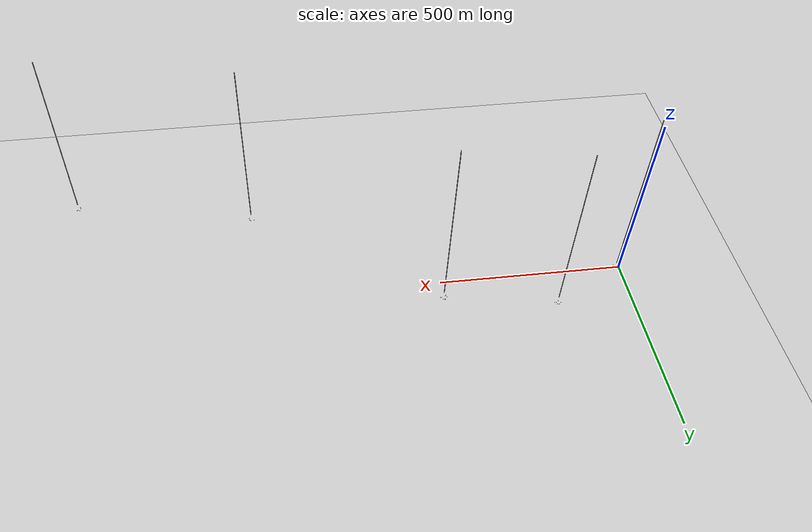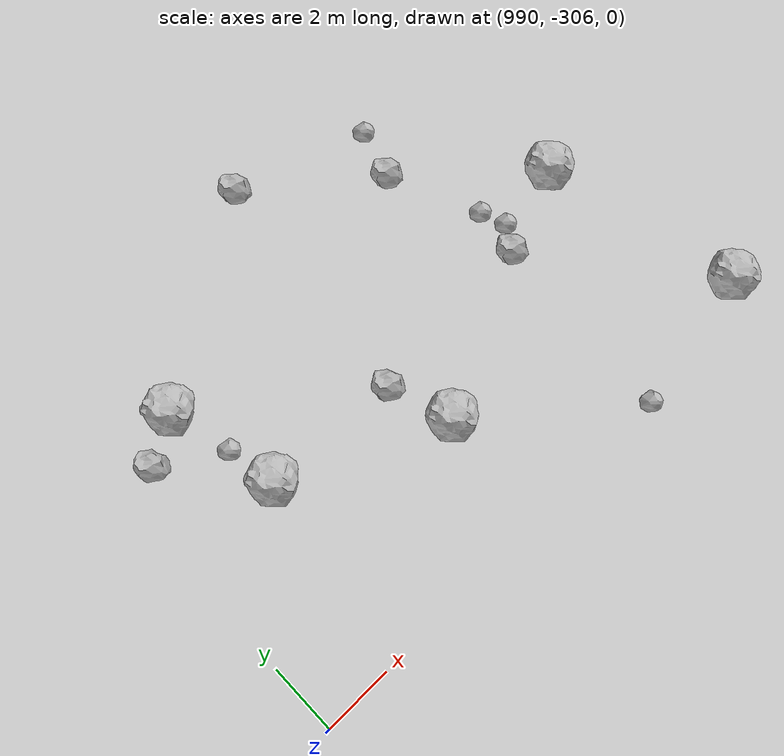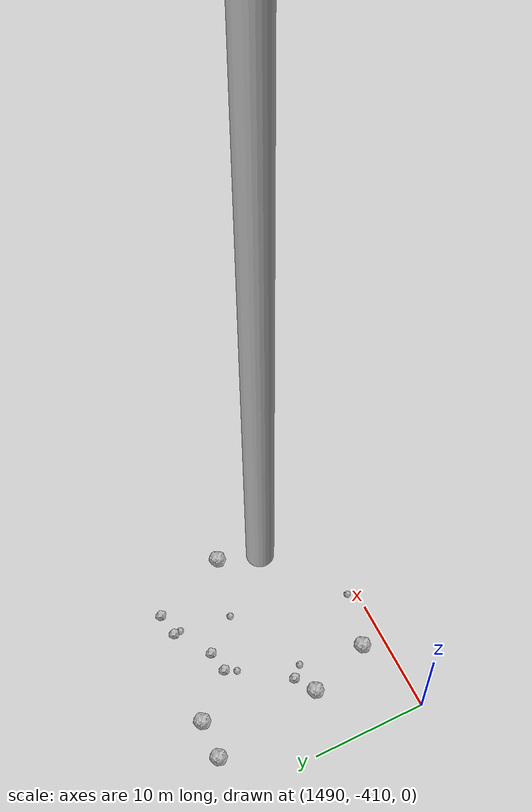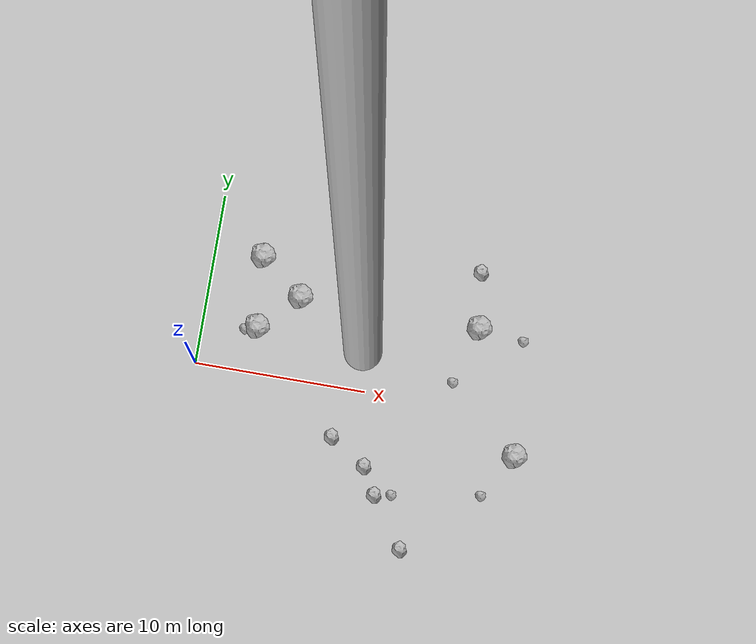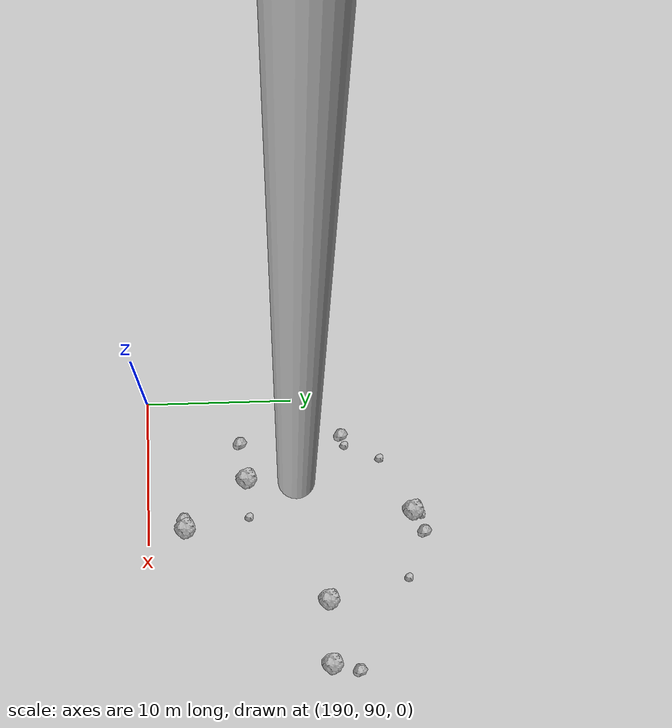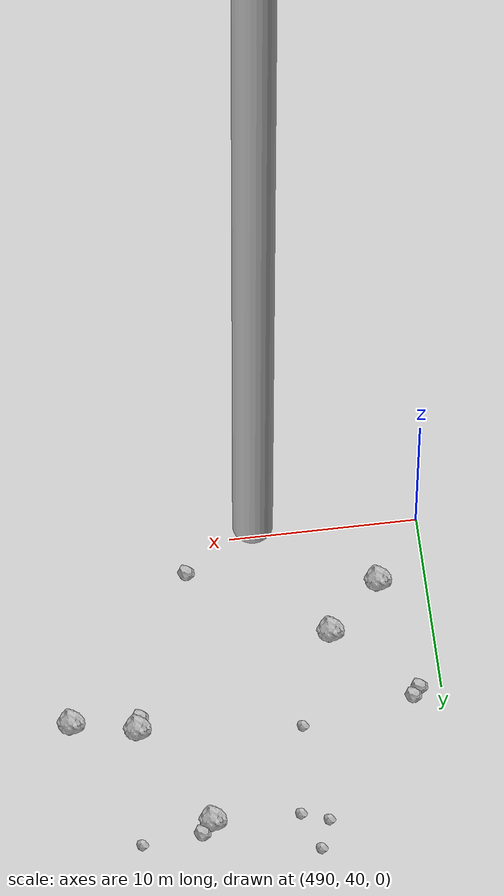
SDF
<?xml version="1.0" ?>
<sdf version="1.6">
  <world name="default">

    <include>
      <uri>model://custom_ground</uri>
    </include>

    <include>
      <uri>model://sun</uri>
    </include>

    <spherical_coordinates>
      <surface_model>EARTH_WGS84</surface_model>
      <latitude_deg>38.161479</latitude_deg>
      <longitude_deg>-122.454630</longitude_deg>
      <elevation>488.0</elevation>
      <heading_deg>90</heading_deg>
    </spherical_coordinates>

    <model name="rock1_0_0">
      <include>
        <uri>model://rock1</uri>
        <pose>2.8348057412272087 6.865386737954481 0.5 0 0 0</pose>
      </include>
    </model>
    <model name="rock1_0_1">
      <include>
        <uri>model://rock1</uri>
        <pose>16.027325328014122 4.777251781558922 0.5 0 0 0</pose>
      </include>
    </model>
    <model name="rock1_0_2">
      <include>
        <uri>model://rock1</uri>
        <pose>5.3896334539602915 4.860523609860749 0.5 0 0 0</pose>
      </include>
    </model>
    <model name="rock1_0_3">
      <include>
        <uri>model://rock1</uri>
        <pose>19.25881146143039 -2.2799716430607226 0.5 0 0 0</pose>
      </include>
    </model>
    <model name="rock1_0_4">
      <include>
        <uri>model://rock1</uri>
        <pose>3.1916226887469468 2.7039560409756884 0.5 0 0 0</pose>
      </include>
    </model>
    <model name="rock2_0_0">
      <include>
        <uri>model://rock2</uri>
        <pose>8.561672737310147 -2.933321386114276 0.3 0 0 0</pose>
      </include>
    </model>
    <model name="rock2_0_1">
      <include>
        <uri>model://rock2</uri>
        <pose>10.704250698164607 -4.323459474417206 0.3 0 0 0</pose>
      </include>
    </model>
    <model name="rock2_0_2">
      <include>
        <uri>model://rock2</uri>
        <pose>13.55791078766945 -8.732680009386119 0.3 0 0 0</pose>
      </include>
    </model>
    <model name="rock2_0_3">
      <include>
        <uri>model://rock2</uri>
        <pose>11.566662742385425 -5.870172268610599 0.3 0 0 0</pose>
      </include>
    </model>
    <model name="rock2_0_4">
      <include>
        <uri>model://rock2</uri>
        <pose>15.581152095139965 8.046608154039156 0.3 0 0 0</pose>
      </include>
    </model>
    <model name="rock3_0_0">
      <include>
        <uri>model://rock3</uri>
        <pose>12.52988077515803 -5.722422675302312 0.2 0 0 0</pose>
      </include>
    </model>
    <model name="rock3_0_1">
      <include>
        <uri>model://rock3</uri>
        <pose>2.4616941559356387 2.4393726832217606 0.2 0 0 0</pose>
      </include>
    </model>
    <model name="rock3_0_2">
      <include>
        <uri>model://rock3</uri>
        <pose>17.670188361186597 -4.897823875562988 0.2 0 0 0</pose>
      </include>
    </model>
    <model name="rock3_0_3">
      <include>
        <uri>model://rock3</uri>
        <pose>14.978838989311399 1.3679889210215457 0.2 0 0 0</pose>
      </include>
    </model>
    <model name="rock3_0_4">
      <include>
        <uri>model://rock3</uri>
        <pose>18.656446910176218 4.431032216902146 0.2 0 0 0</pose>
      </include>
    </model>
    <model name="rock1_1_0">
      <include>
        <uri>model://rock1</uri>
        <pose>195.6153020327055 96.78570397542177 0.5 0 0 0</pose>
      </include>
    </model>
    <model name="rock1_1_1">
      <include>
        <uri>model://rock1</uri>
        <pose>198.13181122987498 108.12460768804549 0.5 0 0 0</pose>
      </include>
    </model>
    <model name="rock1_1_2">
      <include>
        <uri>model://rock1</uri>
        <pose>204.0924280918048 102.17651766662388 0.5 0 0 0</pose>
      </include>
    </model>
    <model name="rock1_1_3">
      <include>
        <uri>model://rock1</uri>
        <pose>198.96515512545344 92.53481149843333 0.5 0 0 0</pose>
      </include>
    </model>
    <model name="rock1_1_4">
      <include>
        <uri>model://rock1</uri>
        <pose>208.39471240922148 102.2510876810133 0.5 0 0 0</pose>
      </include>
    </model>
    <model name="rock2_1_0">
      <include>
        <uri>model://rock2</uri>
        <pose>208.8446256550815 104.097120657126 0.3 0 0 0</pose>
      </include>
    </model>
    <model name="rock2_1_1">
      <include>
        <uri>model://rock2</uri>
        <pose>192.65560832792295 103.37551117303187 0.3 0 0 0</pose>
      </include>
    </model>
    <model name="rock2_1_2">
      <include>
        <uri>model://rock2</uri>
        <pose>198.2641623144413 92.44970579023114 0.3 0 0 0</pose>
      </include>
    </model>
    <model name="rock2_1_3">
      <include>
        <uri>model://rock2</uri>
        <pose>199.55045024909046 108.85718632237237 0.3 0 0 0</pose>
      </include>
    </model>
    <model name="rock2_1_4">
      <include>
        <uri>model://rock2</uri>
        <pose>193.05179461136726 96.39131506355967 0.3 0 0 0</pose>
      </include>
    </model>
    <model name="rock3_1_0">
      <include>
        <uri>model://rock3</uri>
        <pose>194.35930504952375 105.96610985140312 0.2 0 0 0</pose>
      </include>
    </model>
    <model name="rock3_1_1">
      <include>
        <uri>model://rock3</uri>
        <pose>202.69650518109708 107.63520139834579 0.2 0 0 0</pose>
      </include>
    </model>
    <model name="rock3_1_2">
      <include>
        <uri>model://rock3</uri>
        <pose>198.229123072696 96.90435980017274 0.2 0 0 0</pose>
      </include>
    </model>
    <model name="rock3_1_3">
      <include>
        <uri>model://rock3</uri>
        <pose>198.37678958424272 108.66777912259779 0.2 0 0 0</pose>
      </include>
    </model>
    <model name="rock3_1_4">
      <include>
        <uri>model://rock3</uri>
        <pose>193.37801578499187 103.56866464109663 0.2 0 0 0</pose>
      </include>
    </model>
    <model name="rock1_2_0">
      <include>
        <uri>model://rock1</uri>
        <pose>506.1187684657366 50.77002979246922 0.5 0 0 0</pose>
      </include>
    </model>
    <model name="rock1_2_1">
      <include>
        <uri>model://rock1</uri>
        <pose>502.8126419156195 56.451696180382434 0.5 0 0 0</pose>
      </include>
    </model>
    <model name="rock1_2_2">
      <include>
        <uri>model://rock1</uri>
        <pose>495.3829686498898 46.235760516390656 0.5 0 0 0</pose>
      </include>
    </model>
    <model name="rock1_2_3">
      <include>
        <uri>model://rock1</uri>
        <pose>509.5217965159972 50.03371965366301 0.5 0 0 0</pose>
      </include>
    </model>
    <model name="rock1_2_4">
      <include>
        <uri>model://rock1</uri>
        <pose>492.51278835874473 43.523775377155154 0.5 0 0 0</pose>
      </include>
    </model>
    <model name="rock2_2_0">
      <include>
        <uri>model://rock2</uri>
        <pose>491.17098888547497 49.97623371963067 0.3 0 0 0</pose>
      </include>
    </model>
    <model name="rock2_2_1">
      <include>
        <uri>model://rock2</uri>
        <pose>502.5346659383306 41.84292871235297 0.3 0 0 0</pose>
      </include>
    </model>
    <model name="rock2_2_2">
      <include>
        <uri>model://rock2</uri>
        <pose>505.8991996606887 50.034537784791695 0.3 0 0 0</pose>
      </include>
    </model>
    <model name="rock2_2_3">
      <include>
        <uri>model://rock2</uri>
        <pose>503.42971495030264 57.07334501910119 0.3 0 0 0</pose>
      </include>
    </model>
    <model name="rock2_2_4">
      <include>
        <uri>model://rock2</uri>
        <pose>491.54084347336385 50.442914261937275 0.3 0 0 0</pose>
      </include>
    </model>
    <model name="rock3_2_0">
      <include>
        <uri>model://rock3</uri>
        <pose>506.56805108005 57.31177462599547 0.2 0 0 0</pose>
      </include>
    </model>
    <model name="rock3_2_1">
      <include>
        <uri>model://rock3</uri>
        <pose>496.7780128426046 56.9963406444971 0.2 0 0 0</pose>
      </include>
    </model>
    <model name="rock3_2_2">
      <include>
        <uri>model://rock3</uri>
        <pose>497.37996028492665 58.58183222178077 0.2 0 0 0</pose>
      </include>
    </model>
    <model name="rock3_2_3">
      <include>
        <uri>model://rock3</uri>
        <pose>497.4817054990966 51.457981563468074 0.2 0 0 0</pose>
      </include>
    </model>
    <model name="rock3_2_4">
      <include>
        <uri>model://rock3</uri>
        <pose>498.19714381303913 56.48625611299197 0.2 0 0 0</pose>
      </include>
    </model>
    <model name="rock1_3_0">
      <include>
        <uri>model://rock1</uri>
        <pose>997.9509252399097 -302.43382007695647 0.5 0 0 0</pose>
      </include>
    </model>
    <model name="rock1_3_1">
      <include>
        <uri>model://rock1</uri>
        <pose>1006.6049640238065 -305.010018985586 0.5 0 0 0</pose>
      </include>
    </model>
    <model name="rock1_3_2">
      <include>
        <uri>model://rock1</uri>
        <pose>992.530250802536 -297.01278648083195 0.5 0 0 0</pose>
      </include>
    </model>
    <model name="rock1_3_3">
      <include>
        <uri>model://rock1</uri>
        <pose>1005.3642681704267 -299.05882851648323 0.5 0 0 0</pose>
      </include>
    </model>
    <model name="rock1_3_4">
      <include>
        <uri>model://rock1</uri>
        <pose>993.2603294313184 -300.38213062910415 0.5 0 0 0</pose>
      </include>
    </model>
    <model name="rock2_3_0">
      <include>
        <uri>model://rock2</uri>
        <pose>997.2947635593059 -300.56260783251315 0.3 0 0 0</pose>
      </include>
    </model>
    <model name="rock2_3_1">
      <include>
        <uri>model://rock2</uri>
        <pose>998.2209940227125 -293.12181130246915 0.3 0 0 0</pose>
      </include>
    </model>
    <model name="rock2_3_2">
      <include>
        <uri>model://rock2</uri>
        <pose>1001.7988123511851 -295.8437083559617 0.3 0 0 0</pose>
      </include>
    </model>
    <model name="rock2_3_3">
      <include>
        <uri>model://rock2</uri>
        <pose>991.1370031959489 -297.79617954354785 0.3 0 0 0</pose>
      </include>
    </model>
    <model name="rock2_3_4">
      <include>
        <uri>model://rock2</uri>
        <pose>1002.7051433416243 -300.08817283986923 0.3 0 0 0</pose>
      </include>
    </model>
    <model name="rock3_3_0">
      <include>
        <uri>model://rock3</uri>
        <pose>992.9218714888107 -298.9189578965026 0.2 0 0 0</pose>
      </include>
    </model>
    <model name="rock3_3_1">
      <include>
        <uri>model://rock3</uri>
        <pose>1003.1697796589892 -299.41595653870047 0.2 0 0 0</pose>
      </include>
    </model>
    <model name="rock3_3_2">
      <include>
        <uri>model://rock3</uri>
        <pose>1002.1871951167159 -305.9122544767388 0.2 0 0 0</pose>
      </include>
    </model>
    <model name="rock3_3_3">
      <include>
        <uri>model://rock3</uri>
        <pose>1002.8987533085854 -298.6526457809512 0.2 0 0 0</pose>
      </include>
    </model>
    <model name="rock3_3_4">
      <include>
        <uri>model://rock3</uri>
        <pose>1002.2622981600205 -294.3933401311705 0.2 0 0 0</pose>
      </include>
    </model>
    <model name="rock1_4_0">
      <include>
        <uri>model://rock1</uri>
        <pose>1496.8789186227646 -392.89111069222247 0.5 0 0 0</pose>
      </include>
    </model>
    <model name="rock1_4_1">
      <include>
        <uri>model://rock1</uri>
        <pose>1496.8581049635955 -408.01750360666097 0.5 0 0 0</pose>
      </include>
    </model>
    <model name="rock1_4_2">
      <include>
        <uri>model://rock1</uri>
        <pose>1495.0518518901456 -402.5549917653008 0.5 0 0 0</pose>
      </include>
    </model>
    <model name="rock1_4_3">
      <include>
        <uri>model://rock1</uri>
        <pose>1509.7175192972827 -400.4405745510214 0.5 0 0 0</pose>
      </include>
    </model>
    <model name="rock1_4_4">
      <include>
        <uri>model://rock1</uri>
        <pose>1493.498670837155 -392.77895380357927 0.5 0 0 0</pose>
      </include>
    </model>
    <model name="rock2_4_0">
      <include>
        <uri>model://rock2</uri>
        <pose>1505.0334979060322 -394.10469271487113 0.3 0 0 0</pose>
      </include>
    </model>
    <model name="rock2_4_1">
      <include>
        <uri>model://rock2</uri>
        <pose>1507.0982706282755 -393.7805673529349 0.3 0 0 0</pose>
      </include>
    </model>
    <model name="rock2_4_2">
      <include>
        <uri>model://rock2</uri>
        <pose>1496.8265589253244 -401.50655067399464 0.3 0 0 0</pose>
      </include>
    </model>
    <model name="rock2_4_3">
      <include>
        <uri>model://rock2</uri>
        <pose>1502.0273260880565 -396.17844853257174 0.3 0 0 0</pose>
      </include>
    </model>
    <model name="rock2_4_4">
      <include>
        <uri>model://rock2</uri>
        <pose>1500.143920657962 -396.51091624776444 0.3 0 0 0</pose>
      </include>
    </model>
    <model name="rock3_4_0">
      <include>
        <uri>model://rock3</uri>
        <pose>1505.06878874476 -394.7103555159422 0.2 0 0 0</pose>
      </include>
    </model>
    <model name="rock3_4_1">
      <include>
        <uri>model://rock3</uri>
        <pose>1504.3825683101456 -399.15428573524264 0.2 0 0 0</pose>
      </include>
    </model>
    <model name="rock3_4_2">
      <include>
        <uri>model://rock3</uri>
        <pose>1501.6595619378145 -409.1966530151279 0.2 0 0 0</pose>
      </include>
    </model>
    <model name="rock3_4_3">
      <include>
        <uri>model://rock3</uri>
        <pose>1499.6054528848647 -397.4884165660611 0.2 0 0 0</pose>
      </include>
    </model>
    <model name="rock3_4_4">
      <include>
        <uri>model://rock3</uri>
        <pose>1497.7048229736126 -402.47350406609775 0.2 0 0 0</pose>
      </include>
    </model>

    <model name="cylinder_1">
      <static>true</static>
      <link name="link">
        <visual name="visual">
          <geometry>
            <cylinder>
              <radius>1</radius>
              <length>500</length>
            </cylinder>
          </geometry>
        </visual>
      </link>
      <pose>10 0 270 0 0 0</pose>
    </model>

    <model name="cylinder_2">
      <static>true</static>
      <link name="link">
        <visual name="visual">
          <geometry>
            <cylinder>
              <radius>1</radius>
              <length>500</length>
            </cylinder>
          </geometry>
        </visual>
      </link>
      <pose>200 100 270 0 0 0</pose>
    </model>

    <model name="cylinder_3">
      <static>true</static>
      <link name="link">
        <visual name="visual">
          <geometry>
            <cylinder>
              <radius>1</radius>
              <length>500</length>
            </cylinder>
          </geometry>
        </visual>
      </link>
      <pose>500 50 270 0 0 0</pose>
    </model>

    <model name="cylinder_4">
      <static>true</static>
      <link name="link">
        <visual name="visual">
          <geometry>
            <cylinder>
              <radius>1</radius>
              <length>500</length>
            </cylinder>
          </geometry>
        </visual>
      </link>
      <pose>1000 -300 270 0 0 0</pose>
    </model>

    <model name="cylinder_5">
      <static>true</static>
      <link name="link">
        <visual name="visual">
          <geometry>
            <cylinder>
              <radius>1</radius>
              <length>500</length>
            </cylinder>
          </geometry>
        </visual>
      </link>
      <pose>1500 -400 270 0 0 0</pose>
    </model>

  </world>
</sdf>

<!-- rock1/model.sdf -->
<sdf version="1.6">
  <model name="rock1">
    <static>true</static> <!-- Set to true if the model should not move -->
    <pose>0 0 0 0 0 0</pose>

    <!--z offset is 0.5 for full scale-->

    <link name="link">
      <collision name="rock1_collision">
        <geometry>
          <mesh>
            <uri>model://meshes/rock1.dae</uri>
          </mesh>
        </geometry>
      </collision>
      <visual name="rock1_visual">
        <geometry>
          <mesh>
            <uri>model://meshes/rock1.dae</uri>
          </mesh>
        </geometry>
        <material>
          <script>
            <uri>model://materials/scripts/sand_pebbles.material</uri>
            <name>custom_ground/Image</name>
          </script>
        </material>
      </visual>
    </link>
  </model>
</sdf>

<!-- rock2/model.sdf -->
<sdf version="1.6">
  <model name="rock2">
    <static>true</static> <!-- Set to true if the model should not move -->
    <pose>0 0 0 0 0 0</pose>

    <!--z offset is 0.3 for full scale-->

    <link name="link">
      <collision name="rock2_collision">
        <geometry>
          <mesh>
            <uri>model://meshes/rock2.dae</uri>
          </mesh>
        </geometry>
      </collision>
      <visual name="rock2_visual">
        <geometry>
          <mesh>
            <uri>model://meshes/rock2.dae</uri>
          </mesh>
        </geometry>
        <material>
          <script>
            <uri>model://materials/scripts/sand_pebbles.material</uri>
            <name>custom_ground/Image</name>
          </script>
        </material>
      </visual>
    </link>
  </model>
</sdf>

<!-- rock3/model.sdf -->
<sdf version="1.6">
  <model name="rock3">
    <static>true</static> <!-- Set to true if the model should not move -->
    <pose>0 0 0 0 0 0</pose>

    <!--z offset is 0.2 for full scale-->

    <link name="link">
      <collision name="rock3_collision">
        <geometry>
          <mesh>
            <uri>model://meshes/rock3.dae</uri>
          </mesh>
        </geometry>
      </collision>
      <visual name="rock3_visual">
        <geometry>
          <mesh>
            <uri>model://meshes/rock3.dae</uri>
          </mesh>
        </geometry>
        <material>
          <script>
            <uri>model://materials/scripts/sand_pebbles.material</uri>
            <name>custom_ground/Image</name>
          </script>
        </material>
      </visual>
    </link>
  </model>
</sdf>

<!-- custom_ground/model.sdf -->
<sdf version="1.6">
  <model name="custom_ground">
    <static>true</static> <!-- Ground is static and immovable -->
    <link name="ground_link">
      <pose>240 0 0 0 0 0</pose> <!-- Position and orientation relative to the world -->
      <!-- Visual Representation -->
      <visual name="ground_visual">
        <geometry>
          <plane>
            <normal>0 0 1</normal> <!-- Upward facing plane -->
            <size>500 500</size> <!-- Size of the plane -->
          </plane>
        </geometry>
        <material>
          <script>
            <uri>model://materials/scripts/sand_pebbles.material</uri>
            <name>custom_ground/Image</name>
          </script>
        </material>
      </visual>

      <!-- Collision Representation -->
      <collision name="ground_collision">
        <geometry>
          <plane>
            <normal>0 0 1</normal>
            <size>100 100</size>
          </plane>
        </geometry>
      </collision>

    </link>
  </model>
</sdf>
